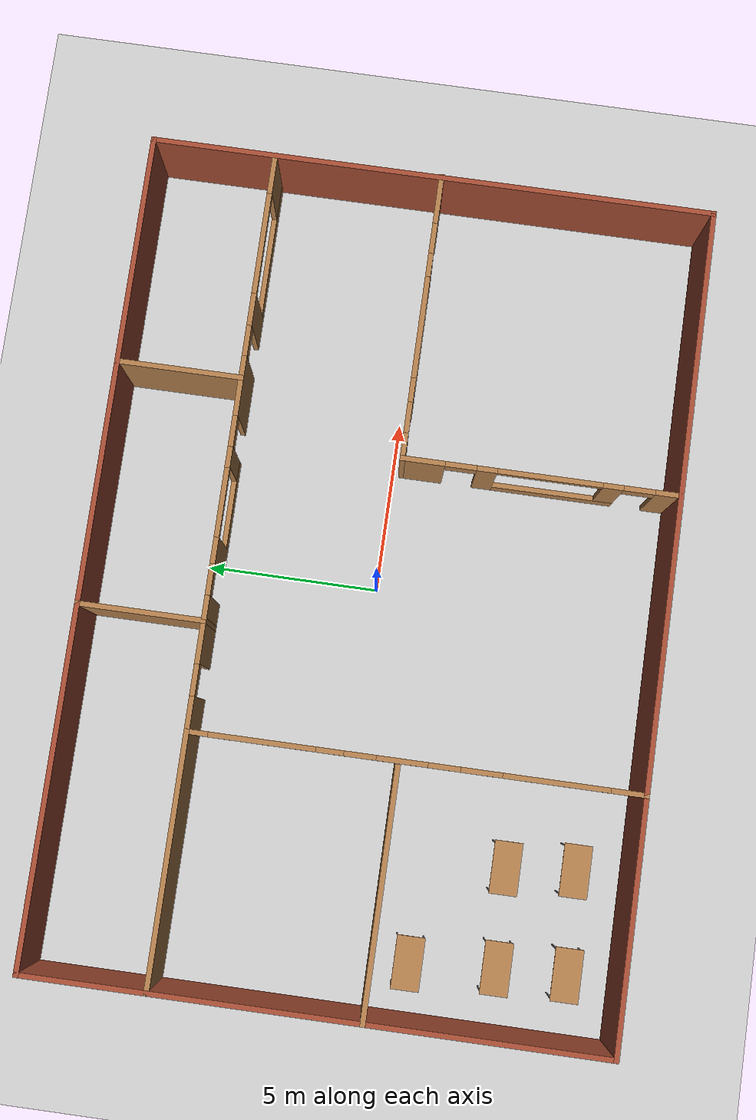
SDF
<sdf version="1.6">
 <world name="default">
  <model name="ground_plane">
   <static>1</static>
   <link name="link">
    <collision name="collision">
     <geometry><plane><normal>0 0 1</normal><size>100 100</size></plane></geometry>
     <surface>
      <contact><collide_bitmask>65535</collide_bitmask></contact>
      <friction><ode><mu>100</mu><mu2>50</mu2></ode></friction>
     </surface>
    </collision>
    <visual name="visual">
     <cast_shadows>0</cast_shadows>
     <geometry><plane><normal>0 0 1</normal><size>100 100</size></plane></geometry>
     <material>
      <script><uri>file://media/materials/scripts/gazebo.material</uri><name>Gazebo/Grey</name></script>
     </material>
    </visual>
   </link>
  </model>
  <model name="building">
   <pose>-0.0377 0.018082 0 0 -0 0</pose>
   <link name="Wall_0">
    <collision name="Wall_0_Collision">
     <geometry><box><size>16.4468 0.15 2.5</size></box></geometry>
     <pose>0 0 1.25 0 -0 0</pose>
    </collision>
    <visual name="Wall_0_Visual">
     <pose>0 0 1.25 0 -0 0</pose>
     <geometry><box><size>16.4468 0.15 2.5</size></box></geometry>
     <material>
      <script><uri>file://media/materials/scripts/gazebo.material</uri><name>Gazebo/Bricks</name></script>
      <ambient>1 1 1 1</ambient>
     </material>
     <meta><layer>0</layer></meta>
    </visual>
    <pose>-11.9342 0.013299 0 0 0 -1.5708</pose>
   </link>
   <link name="Wall_1">
    <collision name="Wall_1_Collision">
     <geometry><box><size>24 0.15 2.5</size></box></geometry>
     <pose>0 0 1.25 0 -0 0</pose>
    </collision>
    <visual name="Wall_1_Visual">
     <pose>0 0 1.25 0 -0 0</pose>
     <geometry><box><size>24 0.15 2.5</size></box></geometry>
     <material>
      <script><uri>file://media/materials/scripts/gazebo.material</uri><name>Gazebo/Bricks</name></script>
      <ambient>1 1 1 1</ambient>
     </material>
     <meta><layer>0</layer></meta>
    </visual>
    <pose>-0.009192 -8.1617 0 0 -0 0</pose>
   </link>
   <link name="Wall_10">
    <pose>7.7596 -0.253061 0 0 -0 3.14159</pose>
    <visual name="Wall_10_Visual_0">
     <pose>-3.51043 0 1.25 0 -0 0</pose>
     <geometry><box><size>1.47914 0.15 2.5</size></box></geometry>
     <material>
      <script><uri>file://media/materials/scripts/gazebo.material</uri><name>Gazebo/Wood</name></script>
      <ambient>0.435294 0.796078 0.67451 1</ambient>
     </material>
     <meta><layer>0</layer></meta>
    </visual>
    <collision name="Wall_10_Collision_0">
     <geometry><box><size>1.47914 0.15 2.5</size></box></geometry>
     <pose>-3.51043 0 1.25 0 -0 0</pose>
    </collision>
    <visual name="Wall_10_Visual_1">
     <pose>-1.51836 0 1.25 0 -0 0</pose>
     <geometry><box><size>0.704992 0.15 2.5</size></box></geometry>
     <material>
      <script><uri>file://media/materials/scripts/gazebo.material</uri><name>Gazebo/Wood</name></script>
      <ambient>0.435294 0.796078 0.67451 1</ambient>
     </material>
     <meta><layer>0</layer></meta>
    </visual>
    <collision name="Wall_10_Collision_1">
     <geometry><box><size>0.704992 0.15 2.5</size></box></geometry>
     <pose>-1.51836 0 1.25 0 -0 0</pose>
    </collision>
    <visual name="Wall_10_Visual_2">
     <pose>3.84456 0 1.25 0 -0 0</pose>
     <geometry><box><size>0.810875 0.15 2.5</size></box></geometry>
     <material>
      <script><uri>file://media/materials/scripts/gazebo.material</uri><name>Gazebo/Wood</name></script>
      <ambient>0.435294 0.796078 0.67451 1</ambient>
     </material>
     <meta><layer>0</layer></meta>
    </visual>
    <collision name="Wall_10_Collision_2">
     <geometry><box><size>0.810875 0.15 2.5</size></box></geometry>
     <pose>3.84456 0 1.25 0 -0 0</pose>
    </collision>
    <visual name="Wall_10_Visual_3">
     <pose>0.686629 0 0.25 0 -0 0</pose>
     <geometry><box><size>3.70499 0.15 0.5</size></box></geometry>
     <material>
      <script><uri>file://media/materials/scripts/gazebo.material</uri><name>Gazebo/Wood</name></script>
      <ambient>0.435294 0.796078 0.67451 1</ambient>
     </material>
     <meta><layer>0</layer></meta>
    </visual>
    <collision name="Wall_10_Collision_3">
     <geometry><box><size>3.70499 0.15 0.5</size></box></geometry>
     <pose>0.686629 0 0.25 0 -0 0</pose>
    </collision>
    <visual name="Wall_10_Visual_4">
     <pose>2.18663 0 1.5 0 -0 0</pose>
     <geometry><box><size>0.704992 0.15 2</size></box></geometry>
     <material>
      <script><uri>file://media/materials/scripts/gazebo.material</uri><name>Gazebo/Wood</name></script>
      <ambient>0.435294 0.796078 0.67451 1</ambient>
     </material>
     <meta><layer>0</layer></meta>
    </visual>
    <collision name="Wall_10_Collision_4">
     <geometry><box><size>0.704992 0.15 2</size></box></geometry>
     <pose>2.18663 0 1.5 0 -0 0</pose>
    </collision>
    <visual name="Wall_10_Visual_5">
     <pose>-2.32086 0 2.25 0 -0 0</pose>
     <geometry><box><size>0.9 0.15 0.5</size></box></geometry>
     <material>
      <script><uri>file://media/materials/scripts/gazebo.material</uri><name>Gazebo/Wood</name></script>
      <ambient>0.435294 0.796078 0.67451 1</ambient>
     </material>
     <meta><layer>0</layer></meta>
    </visual>
    <collision name="Wall_10_Collision_5">
     <geometry><box><size>0.9 0.15 0.5</size></box></geometry>
     <pose>-2.32086 0 2.25 0 -0 0</pose>
    </collision>
    <visual name="Wall_10_Visual_6">
     <pose>2.98913 0 2.25 0 -0 0</pose>
     <geometry><box><size>0.9 0.15 0.5</size></box></geometry>
     <material>
      <script><uri>file://media/materials/scripts/gazebo.material</uri><name>Gazebo/Wood</name></script>
      <ambient>0.435294 0.796078 0.67451 1</ambient>
     </material>
     <meta><layer>0</layer></meta>
    </visual>
    <collision name="Wall_10_Collision_6">
     <geometry><box><size>0.9 0.15 0.5</size></box></geometry>
     <pose>2.98913 0 2.25 0 -0 0</pose>
    </collision>
    <visual name="Wall_10_Visual_7">
     <pose>0.334134 0 2.4 0 -0 0</pose>
     <geometry><box><size>3 0.15 0.2</size></box></geometry>
     <material>
      <script><uri>file://media/materials/scripts/gazebo.material</uri><name>Gazebo/Wood</name></script>
      <ambient>0.435294 0.796078 0.67451 1</ambient>
     </material>
     <meta><layer>0</layer></meta>
    </visual>
    <collision name="Wall_10_Collision_7">
     <geometry><box><size>3 0.15 0.2</size></box></geometry>
     <pose>0.334134 0 2.4 0 -0 0</pose>
    </collision>
   </link>
   <link name="Wall_11">
    <pose>3.5846 -4.17806 0 0 0 -1.5708</pose>
    <visual name="Wall_11_Visual_0">
     <pose>-3.35523 0 1.25 0 -0 0</pose>
     <geometry><box><size>1.28954 0.15 2.5</size></box></geometry>
     <material>
      <script><uri>file://media/materials/scripts/gazebo.material</uri><name>Gazebo/Wood</name></script>
      <ambient>0.435294 0.796078 0.67451 1</ambient>
     </material>
     <meta><layer>0</layer></meta>
    </visual>
    <collision name="Wall_11_Collision_0">
     <geometry><box><size>1.28954 0.15 2.5</size></box></geometry>
     <pose>-3.35523 0 1.25 0 -0 0</pose>
    </collision>
    <visual name="Wall_11_Visual_1">
     <pose>-1.51831 0 1.25 0 -0 0</pose>
     <geometry><box><size>0.58431 0.15 2.5</size></box></geometry>
     <material>
      <script><uri>file://media/materials/scripts/gazebo.material</uri><name>Gazebo/Wood</name></script>
      <ambient>0.435294 0.796078 0.67451 1</ambient>
     </material>
     <meta><layer>0</layer></meta>
    </visual>
    <collision name="Wall_11_Collision_1">
     <geometry><box><size>0.58431 0.15 2.5</size></box></geometry>
     <pose>-1.51831 0 1.25 0 -0 0</pose>
    </collision>
    <visual name="Wall_11_Visual_2">
     <pose>3.62908 0 1.25 0 -0 0</pose>
     <geometry><box><size>0.741842 0.15 2.5</size></box></geometry>
     <material>
      <script><uri>file://media/materials/scripts/gazebo.material</uri><name>Gazebo/Wood</name></script>
      <ambient>0.435294 0.796078 0.67451 1</ambient>
     </material>
     <meta><layer>0</layer></meta>
    </visual>
    <collision name="Wall_11_Collision_2">
     <geometry><box><size>0.741842 0.15 2.5</size></box></geometry>
     <pose>3.62908 0 1.25 0 -0 0</pose>
    </collision>
    <visual name="Wall_11_Visual_3">
     <pose>0.566003 0 0.25 0 -0 0</pose>
     <geometry><box><size>3.58431 0.15 0.5</size></box></geometry>
     <material>
      <script><uri>file://media/materials/scripts/gazebo.material</uri><name>Gazebo/Wood</name></script>
      <ambient>0.435294 0.796078 0.67451 1</ambient>
     </material>
     <meta><layer>0</layer></meta>
    </visual>
    <collision name="Wall_11_Collision_3">
     <geometry><box><size>3.58431 0.15 0.5</size></box></geometry>
     <pose>0.566003 0 0.25 0 -0 0</pose>
    </collision>
    <visual name="Wall_11_Visual_4">
     <pose>2.066 0 1.5 0 -0 0</pose>
     <geometry><box><size>0.58431 0.15 2</size></box></geometry>
     <material>
      <script><uri>file://media/materials/scripts/gazebo.material</uri><name>Gazebo/Wood</name></script>
      <ambient>0.435294 0.796078 0.67451 1</ambient>
     </material>
     <meta><layer>0</layer></meta>
    </visual>
    <collision name="Wall_11_Collision_4">
     <geometry><box><size>0.58431 0.15 2</size></box></geometry>
     <pose>2.066 0 1.5 0 -0 0</pose>
    </collision>
    <visual name="Wall_11_Visual_5">
     <pose>-2.26046 0 2.25 0 -0 0</pose>
     <geometry><box><size>0.9 0.15 0.5</size></box></geometry>
     <material>
      <script><uri>file://media/materials/scripts/gazebo.material</uri><name>Gazebo/Wood</name></script>
      <ambient>0.435294 0.796078 0.67451 1</ambient>
     </material>
     <meta><layer>0</layer></meta>
    </visual>
    <collision name="Wall_11_Collision_5">
     <geometry><box><size>0.9 0.15 0.5</size></box></geometry>
     <pose>-2.26046 0 2.25 0 -0 0</pose>
    </collision>
    <visual name="Wall_11_Visual_6">
     <pose>2.80816 0 2.25 0 -0 0</pose>
     <geometry><box><size>0.9 0.15 0.5</size></box></geometry>
     <material>
      <script><uri>file://media/materials/scripts/gazebo.material</uri><name>Gazebo/Wood</name></script>
      <ambient>0.435294 0.796078 0.67451 1</ambient>
     </material>
     <meta><layer>0</layer></meta>
    </visual>
    <collision name="Wall_11_Collision_6">
     <geometry><box><size>0.9 0.15 0.5</size></box></geometry>
     <pose>2.80816 0 2.25 0 -0 0</pose>
    </collision>
    <visual name="Wall_11_Visual_7">
     <pose>0.273848 0 2.4 0 -0 0</pose>
     <geometry><box><size>3 0.15 0.2</size></box></geometry>
     <material>
      <script><uri>file://media/materials/scripts/gazebo.material</uri><name>Gazebo/Wood</name></script>
      <ambient>0.435294 0.796078 0.67451 1</ambient>
     </material>
     <meta><layer>0</layer></meta>
    </visual>
    <collision name="Wall_11_Collision_7">
     <geometry><box><size>3 0.15 0.2</size></box></geometry>
     <pose>0.273848 0 2.4 0 -0 0</pose>
    </collision>
   </link>
   <link name="Wall_13">
    <collision name="Wall_13_Collision">
     <geometry><box><size>7.09 0.15 2.5</size></box></geometry>
     <pose>0 0 1.25 0 -0 0</pose>
    </collision>
    <visual name="Wall_13_Visual">
     <pose>0 0 1.25 0 -0 0</pose>
     <geometry><box><size>7.09 0.15 2.5</size></box></geometry>
     <material>
      <script><uri>file://media/materials/scripts/gazebo.material</uri><name>Gazebo/Wood</name></script>
      <ambient>1 1 1 1</ambient>
     </material>
     <meta><layer>0</layer></meta>
    </visual>
    <pose>-8.4646 -1.29064 0 0 -0 3.14159</pose>
   </link>
   <link name="Wall_15">
    <collision name="Wall_15_Collision">
     <geometry><box><size>3.71 0.15 2.5</size></box></geometry>
     <pose>0 0 1.25 0 -0 0</pose>
    </collision>
    <visual name="Wall_15_Visual">
     <pose>0 0 1.25 0 -0 0</pose>
     <geometry><box><size>3.71 0.15 2.5</size></box></geometry>
     <material>
      <script><uri>file://media/materials/scripts/gazebo.material</uri><name>Gazebo/Wood</name></script>
      <ambient>1 1 1 1</ambient>
     </material>
     <meta><layer>0</layer></meta>
    </visual>
    <pose>-1.7396 6.38136 0 0 0 -1.5708</pose>
   </link>
   <link name="Wall_17">
    <collision name="Wall_17_Collision">
     <geometry><box><size>3.70921 0.15 2.5</size></box></geometry>
     <pose>0 0 1.25 0 -0 0</pose>
    </collision>
    <visual name="Wall_17_Visual">
     <pose>0 0 1.25 0 -0 0</pose>
     <geometry><box><size>3.70921 0.15 2.5</size></box></geometry>
     <material>
      <script><uri>file://media/materials/scripts/gazebo.material</uri><name>Gazebo/Wood</name></script>
      <ambient>1 1 1 1</ambient>
     </material>
     <meta><layer>0</layer></meta>
    </visual>
    <pose>5.2594 6.38186 0 0 0 -1.5708</pose>
   </link>
   <link name="Wall_2">
    <collision name="Wall_2_Collision">
     <geometry><box><size>16.4468 0.15 2.5</size></box></geometry>
     <pose>0 0 1.25 0 -0 0</pose>
    </collision>
    <visual name="Wall_2_Visual">
     <pose>0 0 1.25 0 -0 0</pose>
     <geometry><box><size>16.4468 0.15 2.5</size></box></geometry>
     <material>
      <script><uri>file://media/materials/scripts/gazebo.material</uri><name>Gazebo/Bricks</name></script>
      <ambient>1 1 1 1</ambient>
     </material>
     <meta><layer>0</layer></meta>
    </visual>
    <pose>11.9158 0.013299 0 0 -0 1.5708</pose>
   </link>
   <link name="Wall_3">
    <collision name="Wall_3_Collision">
     <geometry><box><size>24 0.15 2.5</size></box></geometry>
     <pose>0 0 1.25 0 -0 0</pose>
    </collision>
    <visual name="Wall_3_Visual">
     <pose>0 0 1.25 0 -0 0</pose>
     <geometry><box><size>24 0.15 2.5</size></box></geometry>
     <material>
      <script><uri>file://media/materials/scripts/gazebo.material</uri><name>Gazebo/Bricks</name></script>
      <ambient>1 1 1 1</ambient>
     </material>
     <meta><layer>0</layer></meta>
    </visual>
    <pose>-0.009192 8.1617 0 0 -0 3.14159</pose>
   </link>
   <link name="Wall_5">
    <collision name="Wall_5_Collision">
     <geometry><box><size>7.25 0.15 2.5</size></box></geometry>
     <pose>0 0 1.25 0 -0 0</pose>
    </collision>
    <visual name="Wall_5_Visual">
     <pose>0 0 1.25 0 -0 0</pose>
     <geometry><box><size>7.25 0.15 2.5</size></box></geometry>
     <material>
      <script><uri>file://media/materials/scripts/gazebo.material</uri><name>Gazebo/Wood</name></script>
      <ambient>1 1 1 1</ambient>
     </material>
     <meta><layer>0</layer></meta>
    </visual>
    <pose>-8.3844 4.60149 0 0 0 -3.5e-05</pose>
   </link>
   <link name="Wall_6">
    <pose>-4.8346 -1.78014 0 0 0 -1.5708</pose>
    <visual name="Wall_6_Visual_0">
     <pose>-6.12294 0 1.25 0 -0 0</pose>
     <geometry><box><size>0.667129 0.15 2.5</size></box></geometry>
     <material>
      <script><uri>file://media/materials/scripts/gazebo.material</uri><name>Gazebo/Wood</name></script>
      <ambient>1 1 1 1</ambient>
     </material>
     <meta><layer>0</layer></meta>
    </visual>
    <collision name="Wall_6_Collision_0">
     <geometry><box><size>0.667129 0.15 2.5</size></box></geometry>
     <pose>-6.12294 0 1.25 0 -0 0</pose>
    </collision>
    <visual name="Wall_6_Visual_1">
     <pose>-0.389087 0 1.25 0 -0 0</pose>
     <geometry><box><size>1.44367 0.15 2.5</size></box></geometry>
     <material>
      <script><uri>file://media/materials/scripts/gazebo.material</uri><name>Gazebo/Wood</name></script>
      <ambient>1 1 1 1</ambient>
     </material>
     <meta><layer>0</layer></meta>
    </visual>
    <collision name="Wall_6_Collision_1">
     <geometry><box><size>1.44367 0.15 2.5</size></box></geometry>
     <pose>-0.389087 0 1.25 0 -0 0</pose>
    </collision>
    <visual name="Wall_6_Visual_2">
     <pose>1.81436 0 1.25 0 -0 0</pose>
     <geometry><box><size>1.16323 0.15 2.5</size></box></geometry>
     <material>
      <script><uri>file://media/materials/scripts/gazebo.material</uri><name>Gazebo/Wood</name></script>
      <ambient>1 1 1 1</ambient>
     </material>
     <meta><layer>0</layer></meta>
    </visual>
    <collision name="Wall_6_Collision_2">
     <geometry><box><size>1.16323 0.15 2.5</size></box></geometry>
     <pose>1.81436 0 1.25 0 -0 0</pose>
    </collision>
    <visual name="Wall_6_Visual_3">
     <pose>-3.90015 0 0.25 0 -0 0</pose>
     <geometry><box><size>3.77845 0.15 0.5</size></box></geometry>
     <material>
      <script><uri>file://media/materials/scripts/gazebo.material</uri><name>Gazebo/Wood</name></script>
      <ambient>1 1 1 1</ambient>
     </material>
     <meta><layer>0</layer></meta>
    </visual>
    <collision name="Wall_6_Collision_3">
     <geometry><box><size>3.77845 0.15 0.5</size></box></geometry>
     <pose>-3.90015 0 0.25 0 -0 0</pose>
    </collision>
    <visual name="Wall_6_Visual_4">
     <pose>4.42624 0 0.25 0 -0 0</pose>
     <geometry><box><size>4.06052 0.15 0.5</size></box></geometry>
     <material>
      <script><uri>file://media/materials/scripts/gazebo.material</uri><name>Gazebo/Wood</name></script>
      <ambient>1 1 1 1</ambient>
     </material>
     <meta><layer>0</layer></meta>
    </visual>
    <collision name="Wall_6_Collision_4">
     <geometry><box><size>4.06052 0.15 0.5</size></box></geometry>
     <pose>4.42624 0 0.25 0 -0 0</pose>
    </collision>
    <visual name="Wall_6_Visual_5">
     <pose>-2.40015 0 1.5 0 -0 0</pose>
     <geometry><box><size>0.77845 0.15 2</size></box></geometry>
     <material>
      <script><uri>file://media/materials/scripts/gazebo.material</uri><name>Gazebo/Wood</name></script>
      <ambient>1 1 1 1</ambient>
     </material>
     <meta><layer>0</layer></meta>
    </visual>
    <collision name="Wall_6_Collision_5">
     <geometry><box><size>0.77845 0.15 2</size></box></geometry>
     <pose>-2.40015 0 1.5 0 -0 0</pose>
    </collision>
    <visual name="Wall_6_Visual_6">
     <pose>-2.40015 0 1.5 0 -0 0</pose>
     <geometry><box><size>0.77845 0.15 2</size></box></geometry>
     <material>
      <script><uri>file://media/materials/scripts/gazebo.material</uri><name>Gazebo/Wood</name></script>
      <ambient>1 1 1 1</ambient>
     </material>
     <meta><layer>0</layer></meta>
    </visual>
    <collision name="Wall_6_Collision_6">
     <geometry><box><size>0.77845 0.15 2</size></box></geometry>
     <pose>-2.40015 0 1.5 0 -0 0</pose>
    </collision>
    <visual name="Wall_6_Visual_7">
     <pose>5.92624 0 1.5 0 -0 0</pose>
     <geometry><box><size>1.06052 0.15 2</size></box></geometry>
     <material>
      <script><uri>file://media/materials/scripts/gazebo.material</uri><name>Gazebo/Wood</name></script>
      <ambient>1 1 1 1</ambient>
     </material>
     <meta><layer>0</layer></meta>
    </visual>
    <collision name="Wall_6_Collision_7">
     <geometry><box><size>1.06052 0.15 2</size></box></geometry>
     <pose>5.92624 0 1.5 0 -0 0</pose>
    </collision>
    <visual name="Wall_6_Visual_8">
     <pose>0.782747 0 2.25 0 -0 0</pose>
     <geometry><box><size>0.9 0.15 0.5</size></box></geometry>
     <material>
      <script><uri>file://media/materials/scripts/gazebo.material</uri><name>Gazebo/Wood</name></script>
      <ambient>1 1 1 1</ambient>
     </material>
     <meta><layer>0</layer></meta>
    </visual>
    <collision name="Wall_6_Collision_8">
     <geometry><box><size>0.9 0.15 0.5</size></box></geometry>
     <pose>0.782747 0 2.25 0 -0 0</pose>
    </collision>
    <visual name="Wall_6_Visual_9">
     <pose>-1.56092 0 2.25 0 -0 0</pose>
     <geometry><box><size>0.9 0.15 0.5</size></box></geometry>
     <material>
      <script><uri>file://media/materials/scripts/gazebo.material</uri><name>Gazebo/Wood</name></script>
      <ambient>1 1 1 1</ambient>
     </material>
     <meta><layer>0</layer></meta>
    </visual>
    <collision name="Wall_6_Collision_9">
     <geometry><box><size>0.9 0.15 0.5</size></box></geometry>
     <pose>-1.56092 0 2.25 0 -0 0</pose>
    </collision>
    <visual name="Wall_6_Visual_10">
     <pose>-1.56092 0 2.25 0 -0 0</pose>
     <geometry><box><size>0.9 0.15 0.5</size></box></geometry>
     <material>
      <script><uri>file://media/materials/scripts/gazebo.material</uri><name>Gazebo/Wood</name></script>
      <ambient>1 1 1 1</ambient>
     </material>
     <meta><layer>0</layer></meta>
    </visual>
    <collision name="Wall_6_Collision_10">
     <geometry><box><size>0.9 0.15 0.5</size></box></geometry>
     <pose>-1.56092 0 2.25 0 -0 0</pose>
    </collision>
    <visual name="Wall_6_Visual_11">
     <pose>-4.28937 0 2.4 0 -0 0</pose>
     <geometry><box><size>3 0.15 0.2</size></box></geometry>
     <material>
      <script><uri>file://media/materials/scripts/gazebo.material</uri><name>Gazebo/Wood</name></script>
      <ambient>1 1 1 1</ambient>
     </material>
     <meta><layer>0</layer></meta>
    </visual>
    <collision name="Wall_6_Collision_11">
     <geometry><box><size>3 0.15 0.2</size></box></geometry>
     <pose>-4.28937 0 2.4 0 -0 0</pose>
    </collision>
    <visual name="Wall_6_Visual_12">
     <pose>3.89598 0 2.4 0 -0 0</pose>
     <geometry><box><size>3 0.15 0.2</size></box></geometry>
     <material>
      <script><uri>file://media/materials/scripts/gazebo.material</uri><name>Gazebo/Wood</name></script>
      <ambient>1 1 1 1</ambient>
     </material>
     <meta><layer>0</layer></meta>
    </visual>
    <collision name="Wall_6_Collision_12">
     <geometry><box><size>3 0.15 0.2</size></box></geometry>
     <pose>3.89598 0 2.4 0 -0 0</pose>
    </collision>
   </link>
   <link name="Wall_8">
    <pose>3.4656 4.60149 0 0 -0 1.5e-05</pose>
    <visual name="Wall_8_Visual_0">
     <pose>-7.84677 0 1.25 0 -0 0</pose>
     <geometry><box><size>1.05647 0.15 2.5</size></box></geometry>
     <material>
      <script><uri>file://media/materials/scripts/gazebo.material</uri><name>Gazebo/Wood</name></script>
      <ambient>1 1 1 1</ambient>
     </material>
     <meta><layer>0</layer></meta>
    </visual>
    <collision name="Wall_8_Collision_0">
     <geometry><box><size>1.05647 0.15 2.5</size></box></geometry>
     <pose>-7.84677 0 1.25 0 -0 0</pose>
    </collision>
    <visual name="Wall_8_Visual_1">
     <pose>-5.45184 0 1.25 0 -0 0</pose>
     <geometry><box><size>1.93339 0.15 2.5</size></box></geometry>
     <material>
      <script><uri>file://media/materials/scripts/gazebo.material</uri><name>Gazebo/Wood</name></script>
      <ambient>1 1 1 1</ambient>
     </material>
     <meta><layer>0</layer></meta>
    </visual>
    <collision name="Wall_8_Collision_1">
     <geometry><box><size>1.93339 0.15 2.5</size></box></geometry>
     <pose>-5.45184 0 1.25 0 -0 0</pose>
    </collision>
    <visual name="Wall_8_Visual_2">
     <pose>-3.20827 0 1.25 0 -0 0</pose>
     <geometry><box><size>0.753748 0.15 2.5</size></box></geometry>
     <material>
      <script><uri>file://media/materials/scripts/gazebo.material</uri><name>Gazebo/Wood</name></script>
      <ambient>1 1 1 1</ambient>
     </material>
     <meta><layer>0</layer></meta>
    </visual>
    <collision name="Wall_8_Collision_2">
     <geometry><box><size>0.753748 0.15 2.5</size></box></geometry>
     <pose>-3.20827 0 1.25 0 -0 0</pose>
    </collision>
    <visual name="Wall_8_Visual_3">
     <pose>1.56168 0 1.25 0 -0 0</pose>
     <geometry><box><size>1.75849 0.15 2.5</size></box></geometry>
     <material>
      <script><uri>file://media/materials/scripts/gazebo.material</uri><name>Gazebo/Wood</name></script>
      <ambient>1 1 1 1</ambient>
     </material>
     <meta><layer>0</layer></meta>
    </visual>
    <collision name="Wall_8_Collision_3">
     <geometry><box><size>1.75849 0.15 2.5</size></box></geometry>
     <pose>1.56168 0 1.25 0 -0 0</pose>
    </collision>
    <visual name="Wall_8_Visual_4">
     <pose>3.81759 0 1.25 0 -0 0</pose>
     <geometry><box><size>0.953347 0.15 2.5</size></box></geometry>
     <material>
      <script><uri>file://media/materials/scripts/gazebo.material</uri><name>Gazebo/Wood</name></script>
      <ambient>1 1 1 1</ambient>
     </material>
     <meta><layer>0</layer></meta>
    </visual>
    <collision name="Wall_8_Collision_4">
     <geometry><box><size>0.953347 0.15 2.5</size></box></geometry>
     <pose>3.81759 0 1.25 0 -0 0</pose>
    </collision>
    <visual name="Wall_8_Visual_5">
     <pose>-1.52448 0 0.25 0 -0 0</pose>
     <geometry><box><size>2.61383 0.15 0.5</size></box></geometry>
     <material>
      <script><uri>file://media/materials/scripts/gazebo.material</uri><name>Gazebo/Wood</name></script>
      <ambient>1 1 1 1</ambient>
     </material>
     <meta><layer>0</layer></meta>
    </visual>
    <collision name="Wall_8_Collision_5">
     <geometry><box><size>2.61383 0.15 0.5</size></box></geometry>
     <pose>-1.52448 0 0.25 0 -0 0</pose>
    </collision>
    <visual name="Wall_8_Visual_6">
     <pose>6.33463 0 0.25 0 -0 0</pose>
     <geometry><box><size>4.08073 0.15 0.5</size></box></geometry>
     <material>
      <script><uri>file://media/materials/scripts/gazebo.material</uri><name>Gazebo/Wood</name></script>
      <ambient>1 1 1 1</ambient>
     </material>
     <meta><layer>0</layer></meta>
    </visual>
    <collision name="Wall_8_Collision_6">
     <geometry><box><size>4.08073 0.15 0.5</size></box></geometry>
     <pose>6.33463 0 0.25 0 -0 0</pose>
    </collision>
    <visual name="Wall_8_Visual_7">
     <pose>-0.524482 0 1.5 0 -0 0</pose>
     <geometry><box><size>0.613827 0.15 2</size></box></geometry>
     <material>
      <script><uri>file://media/materials/scripts/gazebo.material</uri><name>Gazebo/Wood</name></script>
      <ambient>1 1 1 1</ambient>
     </material>
     <meta><layer>0</layer></meta>
    </visual>
    <collision name="Wall_8_Collision_7">
     <geometry><box><size>0.613827 0.15 2</size></box></geometry>
     <pose>-0.524482 0 1.5 0 -0 0</pose>
    </collision>
    <visual name="Wall_8_Visual_8">
     <pose>-0.524482 0 1.5 0 -0 0</pose>
     <geometry><box><size>0.613827 0.15 2</size></box></geometry>
     <material>
      <script><uri>file://media/materials/scripts/gazebo.material</uri><name>Gazebo/Wood</name></script>
      <ambient>1 1 1 1</ambient>
     </material>
     <meta><layer>0</layer></meta>
    </visual>
    <collision name="Wall_8_Collision_8">
     <geometry><box><size>0.613827 0.15 2</size></box></geometry>
     <pose>-0.524482 0 1.5 0 -0 0</pose>
    </collision>
    <visual name="Wall_8_Visual_9">
     <pose>7.83463 0 1.5 0 -0 0</pose>
     <geometry><box><size>1.08073 0.15 2</size></box></geometry>
     <material>
      <script><uri>file://media/materials/scripts/gazebo.material</uri><name>Gazebo/Wood</name></script>
      <ambient>1 1 1 1</ambient>
     </material>
     <meta><layer>0</layer></meta>
    </visual>
    <collision name="Wall_8_Collision_9">
     <geometry><box><size>1.08073 0.15 2</size></box></geometry>
     <pose>7.83463 0 1.5 0 -0 0</pose>
    </collision>
    <visual name="Wall_8_Visual_10">
     <pose>-6.86853 0 2.25 0 -0 0</pose>
     <geometry><box><size>0.9 0.15 0.5</size></box></geometry>
     <material>
      <script><uri>file://media/materials/scripts/gazebo.material</uri><name>Gazebo/Wood</name></script>
      <ambient>1 1 1 1</ambient>
     </material>
     <meta><layer>0</layer></meta>
    </visual>
    <collision name="Wall_8_Collision_10">
     <geometry><box><size>0.9 0.15 0.5</size></box></geometry>
     <pose>-6.86853 0 2.25 0 -0 0</pose>
    </collision>
    <visual name="Wall_8_Visual_11">
     <pose>-4.03514 0 2.25 0 -0 0</pose>
     <geometry><box><size>0.9 0.15 0.5</size></box></geometry>
     <material>
      <script><uri>file://media/materials/scripts/gazebo.material</uri><name>Gazebo/Wood</name></script>
      <ambient>1 1 1 1</ambient>
     </material>
     <meta><layer>0</layer></meta>
    </visual>
    <collision name="Wall_8_Collision_11">
     <geometry><box><size>0.9 0.15 0.5</size></box></geometry>
     <pose>-4.03514 0 2.25 0 -0 0</pose>
    </collision>
    <visual name="Wall_8_Visual_12">
     <pose>2.89092 0 2.25 0 -0 0</pose>
     <geometry><box><size>0.9 0.15 0.5</size></box></geometry>
     <material>
      <script><uri>file://media/materials/scripts/gazebo.material</uri><name>Gazebo/Wood</name></script>
      <ambient>1 1 1 1</ambient>
     </material>
     <meta><layer>0</layer></meta>
    </visual>
    <collision name="Wall_8_Collision_12">
     <geometry><box><size>0.9 0.15 0.5</size></box></geometry>
     <pose>2.89092 0 2.25 0 -0 0</pose>
    </collision>
    <visual name="Wall_8_Visual_13">
     <pose>0.232431 0 2.25 0 -0 0</pose>
     <geometry><box><size>0.9 0.15 0.5</size></box></geometry>
     <material>
      <script><uri>file://media/materials/scripts/gazebo.material</uri><name>Gazebo/Wood</name></script>
      <ambient>1 1 1 1</ambient>
     </material>
     <meta><layer>0</layer></meta>
    </visual>
    <collision name="Wall_8_Collision_13">
     <geometry><box><size>0.9 0.15 0.5</size></box></geometry>
     <pose>0.232431 0 2.25 0 -0 0</pose>
    </collision>
    <visual name="Wall_8_Visual_14">
     <pose>0.232431 0 2.25 0 -0 0</pose>
     <geometry><box><size>0.9 0.15 0.5</size></box></geometry>
     <material>
      <script><uri>file://media/materials/scripts/gazebo.material</uri><name>Gazebo/Wood</name></script>
      <ambient>1 1 1 1</ambient>
     </material>
     <meta><layer>0</layer></meta>
    </visual>
    <collision name="Wall_8_Collision_14">
     <geometry><box><size>0.9 0.15 0.5</size></box></geometry>
     <pose>0.232431 0 2.25 0 -0 0</pose>
    </collision>
    <visual name="Wall_8_Visual_15">
     <pose>-1.8314 0 2.4 0 -0 0</pose>
     <geometry><box><size>2 0.15 0.2</size></box></geometry>
     <material>
      <script><uri>file://media/materials/scripts/gazebo.material</uri><name>Gazebo/Wood</name></script>
      <ambient>1 1 1 1</ambient>
     </material>
     <meta><layer>0</layer></meta>
    </visual>
    <collision name="Wall_8_Collision_15">
     <geometry><box><size>2 0.15 0.2</size></box></geometry>
     <pose>-1.8314 0 2.4 0 -0 0</pose>
    </collision>
    <visual name="Wall_8_Visual_16">
     <pose>5.79427 0 2.4 0 -0 0</pose>
     <geometry><box><size>3 0.15 0.2</size></box></geometry>
     <material>
      <script><uri>file://media/materials/scripts/gazebo.material</uri><name>Gazebo/Wood</name></script>
      <ambient>1 1 1 1</ambient>
     </material>
     <meta><layer>0</layer></meta>
    </visual>
    <collision name="Wall_8_Collision_16">
     <geometry><box><size>3 0.15 0.2</size></box></geometry>
     <pose>5.79427 0 2.4 0 -0 0</pose>
    </collision>
   </link>
   <static>1</static>
  </model>
  <model name="table">
   <static>1</static>
   <link name="link">
    <collision name="surface">
     <pose>0 0 1 0 -0 0</pose>
     <geometry><box><size>1.5 0.8 0.03</size></box></geometry>
     <surface><friction><ode><mu>0.6</mu><mu2>0.6</mu2></ode></friction></surface>
    </collision>
    <visual name="visual1">
     <pose>0 0 1 0 -0 0</pose>
     <geometry><box><size>1.5 0.8 0.03</size></box></geometry>
     <material>
      <script><uri>file://media/materials/scripts/gazebo.material</uri><name>Gazebo/Wood</name></script>
     </material>
    </visual>
    <collision name="front_left_leg">
     <pose>0.68 0.38 0.5 0 -0 0</pose>
     <geometry><cylinder><radius>0.02</radius><length>1</length></cylinder></geometry>
    </collision>
    <visual name="front_left_leg">
     <pose>0.68 0.38 0.5 0 -0 0</pose>
     <geometry><cylinder><radius>0.02</radius><length>1</length></cylinder></geometry>
     <material>
      <script><uri>file://media/materials/scripts/gazebo.material</uri><name>Gazebo/Grey</name></script>
     </material>
    </visual>
    <collision name="front_right_leg">
     <pose>0.68 -0.38 0.5 0 -0 0</pose>
     <geometry><cylinder><radius>0.02</radius><length>1</length></cylinder></geometry>
    </collision>
    <visual name="front_right_leg">
     <pose>0.68 -0.38 0.5 0 -0 0</pose>
     <geometry><cylinder><radius>0.02</radius><length>1</length></cylinder></geometry>
     <material>
      <script><uri>file://media/materials/scripts/gazebo.material</uri><name>Gazebo/Grey</name></script>
     </material>
    </visual>
    <collision name="back_right_leg">
     <pose>-0.68 -0.38 0.5 0 -0 0</pose>
     <geometry><cylinder><radius>0.02</radius><length>1</length></cylinder></geometry>
    </collision>
    <visual name="back_right_leg">
     <pose>-0.68 -0.38 0.5 0 -0 0</pose>
     <geometry><cylinder><radius>0.02</radius><length>1</length></cylinder></geometry>
     <material>
      <script><uri>file://media/materials/scripts/gazebo.material</uri><name>Gazebo/Grey</name></script>
     </material>
    </visual>
    <collision name="back_left_leg">
     <pose>-0.68 0.38 0.5 0 -0 0</pose>
     <geometry><cylinder><radius>0.02</radius><length>1</length></cylinder></geometry>
    </collision>
    <visual name="back_left_leg">
     <pose>-0.68 0.38 0.5 0 -0 0</pose>
     <geometry><cylinder><radius>0.02</radius><length>1</length></cylinder></geometry>
     <material>
      <script><uri>file://media/materials/scripts/gazebo.material</uri><name>Gazebo/Grey</name></script>
     </material>
    </visual>
   </link>
   <pose>-10.133 -6.77648 0 0 -0 0</pose>
  </model>
  <model name="table_clone">
   <static>1</static>
   <link name="link">
    <collision name="surface">
     <pose>0 0 1 0 -0 0</pose>
     <geometry><box><size>1.5 0.8 0.03</size></box></geometry>
     <surface><friction><ode><mu>0.6</mu><mu2>0.6</mu2></ode></friction></surface>
    </collision>
    <visual name="visual1">
     <pose>0 0 1 0 -0 0</pose>
     <geometry><box><size>1.5 0.8 0.03</size></box></geometry>
     <material>
      <script><uri>file://media/materials/scripts/gazebo.material</uri><name>Gazebo/Wood</name></script>
     </material>
    </visual>
    <collision name="front_left_leg">
     <pose>0.68 0.38 0.5 0 -0 0</pose>
     <geometry><cylinder><radius>0.02</radius><length>1</length></cylinder></geometry>
    </collision>
    <visual name="front_left_leg">
     <pose>0.68 0.38 0.5 0 -0 0</pose>
     <geometry><cylinder><radius>0.02</radius><length>1</length></cylinder></geometry>
     <material>
      <script><uri>file://media/materials/scripts/gazebo.material</uri><name>Gazebo/Grey</name></script>
     </material>
    </visual>
    <collision name="front_right_leg">
     <pose>0.68 -0.38 0.5 0 -0 0</pose>
     <geometry><cylinder><radius>0.02</radius><length>1</length></cylinder></geometry>
    </collision>
    <visual name="front_right_leg">
     <pose>0.68 -0.38 0.5 0 -0 0</pose>
     <geometry><cylinder><radius>0.02</radius><length>1</length></cylinder></geometry>
     <material>
      <script><uri>file://media/materials/scripts/gazebo.material</uri><name>Gazebo/Grey</name></script>
     </material>
    </visual>
    <collision name="back_right_leg">
     <pose>-0.68 -0.38 0.5 0 -0 0</pose>
     <geometry><cylinder><radius>0.02</radius><length>1</length></cylinder></geometry>
    </collision>
    <visual name="back_right_leg">
     <pose>-0.68 -0.38 0.5 0 -0 0</pose>
     <geometry><cylinder><radius>0.02</radius><length>1</length></cylinder></geometry>
     <material>
      <script><uri>file://media/materials/scripts/gazebo.material</uri><name>Gazebo/Grey</name></script>
     </material>
    </visual>
    <collision name="back_left_leg">
     <pose>-0.68 0.38 0.5 0 -0 0</pose>
     <geometry><cylinder><radius>0.02</radius><length>1</length></cylinder></geometry>
    </collision>
    <visual name="back_left_leg">
     <pose>-0.68 0.38 0.5 0 -0 0</pose>
     <geometry><cylinder><radius>0.02</radius><length>1</length></cylinder></geometry>
     <material>
      <script><uri>file://media/materials/scripts/gazebo.material</uri><name>Gazebo/Grey</name></script>
     </material>
    </visual>
   </link>
   <pose>-7.24665 -6.67613 0 0 -0 0</pose>
  </model>
  <model name="table_clone_0">
   <static>1</static>
   <link name="link">
    <collision name="surface">
     <pose>0 0 1 0 -0 0</pose>
     <geometry><box><size>1.5 0.8 0.03</size></box></geometry>
     <surface><friction><ode><mu>0.6</mu><mu2>0.6</mu2></ode></friction></surface>
    </collision>
    <visual name="visual1">
     <pose>0 0 1 0 -0 0</pose>
     <geometry><box><size>1.5 0.8 0.03</size></box></geometry>
     <material>
      <script><uri>file://media/materials/scripts/gazebo.material</uri><name>Gazebo/Wood</name></script>
     </material>
    </visual>
    <collision name="front_left_leg">
     <pose>0.68 0.38 0.5 0 -0 0</pose>
     <geometry><cylinder><radius>0.02</radius><length>1</length></cylinder></geometry>
    </collision>
    <visual name="front_left_leg">
     <pose>0.68 0.38 0.5 0 -0 0</pose>
     <geometry><cylinder><radius>0.02</radius><length>1</length></cylinder></geometry>
     <material>
      <script><uri>file://media/materials/scripts/gazebo.material</uri><name>Gazebo/Grey</name></script>
     </material>
    </visual>
    <collision name="front_right_leg">
     <pose>0.68 -0.38 0.5 0 -0 0</pose>
     <geometry><cylinder><radius>0.02</radius><length>1</length></cylinder></geometry>
    </collision>
    <visual name="front_right_leg">
     <pose>0.68 -0.38 0.5 0 -0 0</pose>
     <geometry><cylinder><radius>0.02</radius><length>1</length></cylinder></geometry>
     <material>
      <script><uri>file://media/materials/scripts/gazebo.material</uri><name>Gazebo/Grey</name></script>
     </material>
    </visual>
    <collision name="back_right_leg">
     <pose>-0.68 -0.38 0.5 0 -0 0</pose>
     <geometry><cylinder><radius>0.02</radius><length>1</length></cylinder></geometry>
    </collision>
    <visual name="back_right_leg">
     <pose>-0.68 -0.38 0.5 0 -0 0</pose>
     <geometry><cylinder><radius>0.02</radius><length>1</length></cylinder></geometry>
     <material>
      <script><uri>file://media/materials/scripts/gazebo.material</uri><name>Gazebo/Grey</name></script>
     </material>
    </visual>
    <collision name="back_left_leg">
     <pose>-0.68 0.38 0.5 0 -0 0</pose>
     <geometry><cylinder><radius>0.02</radius><length>1</length></cylinder></geometry>
    </collision>
    <visual name="back_left_leg">
     <pose>-0.68 0.38 0.5 0 -0 0</pose>
     <geometry><cylinder><radius>0.02</radius><length>1</length></cylinder></geometry>
     <material>
      <script><uri>file://media/materials/scripts/gazebo.material</uri><name>Gazebo/Grey</name></script>
     </material>
    </visual>
   </link>
   <pose>-10.2158 -4.80027 0 0 -0 0</pose>
  </model>
  <model name="table_clone_1">
   <static>1</static>
   <link name="link">
    <collision name="surface">
     <pose>0 0 1 0 -0 0</pose>
     <geometry><box><size>1.5 0.8 0.03</size></box></geometry>
     <surface><friction><ode><mu>0.6</mu><mu2>0.6</mu2></ode></friction></surface>
    </collision>
    <visual name="visual1">
     <pose>0 0 1 0 -0 0</pose>
     <geometry><box><size>1.5 0.8 0.03</size></box></geometry>
     <material>
      <script><uri>file://media/materials/scripts/gazebo.material</uri><name>Gazebo/Wood</name></script>
     </material>
    </visual>
    <collision name="front_left_leg">
     <pose>0.68 0.38 0.5 0 -0 0</pose>
     <geometry><cylinder><radius>0.02</radius><length>1</length></cylinder></geometry>
    </collision>
    <visual name="front_left_leg">
     <pose>0.68 0.38 0.5 0 -0 0</pose>
     <geometry><cylinder><radius>0.02</radius><length>1</length></cylinder></geometry>
     <material>
      <script><uri>file://media/materials/scripts/gazebo.material</uri><name>Gazebo/Grey</name></script>
     </material>
    </visual>
    <collision name="front_right_leg">
     <pose>0.68 -0.38 0.5 0 -0 0</pose>
     <geometry><cylinder><radius>0.02</radius><length>1</length></cylinder></geometry>
    </collision>
    <visual name="front_right_leg">
     <pose>0.68 -0.38 0.5 0 -0 0</pose>
     <geometry><cylinder><radius>0.02</radius><length>1</length></cylinder></geometry>
     <material>
      <script><uri>file://media/materials/scripts/gazebo.material</uri><name>Gazebo/Grey</name></script>
     </material>
    </visual>
    <collision name="back_right_leg">
     <pose>-0.68 -0.38 0.5 0 -0 0</pose>
     <geometry><cylinder><radius>0.02</radius><length>1</length></cylinder></geometry>
    </collision>
    <visual name="back_right_leg">
     <pose>-0.68 -0.38 0.5 0 -0 0</pose>
     <geometry><cylinder><radius>0.02</radius><length>1</length></cylinder></geometry>
     <material>
      <script><uri>file://media/materials/scripts/gazebo.material</uri><name>Gazebo/Grey</name></script>
     </material>
    </visual>
    <collision name="back_left_leg">
     <pose>-0.68 0.38 0.5 0 -0 0</pose>
     <geometry><cylinder><radius>0.02</radius><length>1</length></cylinder></geometry>
    </collision>
    <visual name="back_left_leg">
     <pose>-0.68 0.38 0.5 0 -0 0</pose>
     <geometry><cylinder><radius>0.02</radius><length>1</length></cylinder></geometry>
     <material>
      <script><uri>file://media/materials/scripts/gazebo.material</uri><name>Gazebo/Grey</name></script>
     </material>
    </visual>
   </link>
   <pose>-7.43265 -4.71267 0 0 -0 0</pose>
  </model>
  <model name="table_clone_2">
   <static>1</static>
   <link name="link">
    <collision name="surface">
     <pose>0 0 1 0 -0 0</pose>
     <geometry><box><size>1.5 0.8 0.03</size></box></geometry>
     <surface><friction><ode><mu>0.6</mu><mu2>0.6</mu2></ode></friction></surface>
    </collision>
    <visual name="visual1">
     <pose>0 0 1 0 -0 0</pose>
     <geometry><box><size>1.5 0.8 0.03</size></box></geometry>
     <material>
      <script><uri>file://media/materials/scripts/gazebo.material</uri><name>Gazebo/Wood</name></script>
     </material>
    </visual>
    <collision name="front_left_leg">
     <pose>0.68 0.38 0.5 0 -0 0</pose>
     <geometry><cylinder><radius>0.02</radius><length>1</length></cylinder></geometry>
    </collision>
    <visual name="front_left_leg">
     <pose>0.68 0.38 0.5 0 -0 0</pose>
     <geometry><cylinder><radius>0.02</radius><length>1</length></cylinder></geometry>
     <material>
      <script><uri>file://media/materials/scripts/gazebo.material</uri><name>Gazebo/Grey</name></script>
     </material>
    </visual>
    <collision name="front_right_leg">
     <pose>0.68 -0.38 0.5 0 -0 0</pose>
     <geometry><cylinder><radius>0.02</radius><length>1</length></cylinder></geometry>
    </collision>
    <visual name="front_right_leg">
     <pose>0.68 -0.38 0.5 0 -0 0</pose>
     <geometry><cylinder><radius>0.02</radius><length>1</length></cylinder></geometry>
     <material>
      <script><uri>file://media/materials/scripts/gazebo.material</uri><name>Gazebo/Grey</name></script>
     </material>
    </visual>
    <collision name="back_right_leg">
     <pose>-0.68 -0.38 0.5 0 -0 0</pose>
     <geometry><cylinder><radius>0.02</radius><length>1</length></cylinder></geometry>
    </collision>
    <visual name="back_right_leg">
     <pose>-0.68 -0.38 0.5 0 -0 0</pose>
     <geometry><cylinder><radius>0.02</radius><length>1</length></cylinder></geometry>
     <material>
      <script><uri>file://media/materials/scripts/gazebo.material</uri><name>Gazebo/Grey</name></script>
     </material>
    </visual>
    <collision name="back_left_leg">
     <pose>-0.68 0.38 0.5 0 -0 0</pose>
     <geometry><cylinder><radius>0.02</radius><length>1</length></cylinder></geometry>
    </collision>
    <visual name="back_left_leg">
     <pose>-0.68 0.38 0.5 0 -0 0</pose>
     <geometry><cylinder><radius>0.02</radius><length>1</length></cylinder></geometry>
     <material>
      <script><uri>file://media/materials/scripts/gazebo.material</uri><name>Gazebo/Grey</name></script>
     </material>
    </visual>
   </link>
   <pose>-10.4129 -2.32085 0 0 -0 0</pose>
  </model>
 </world>
</sdf>
